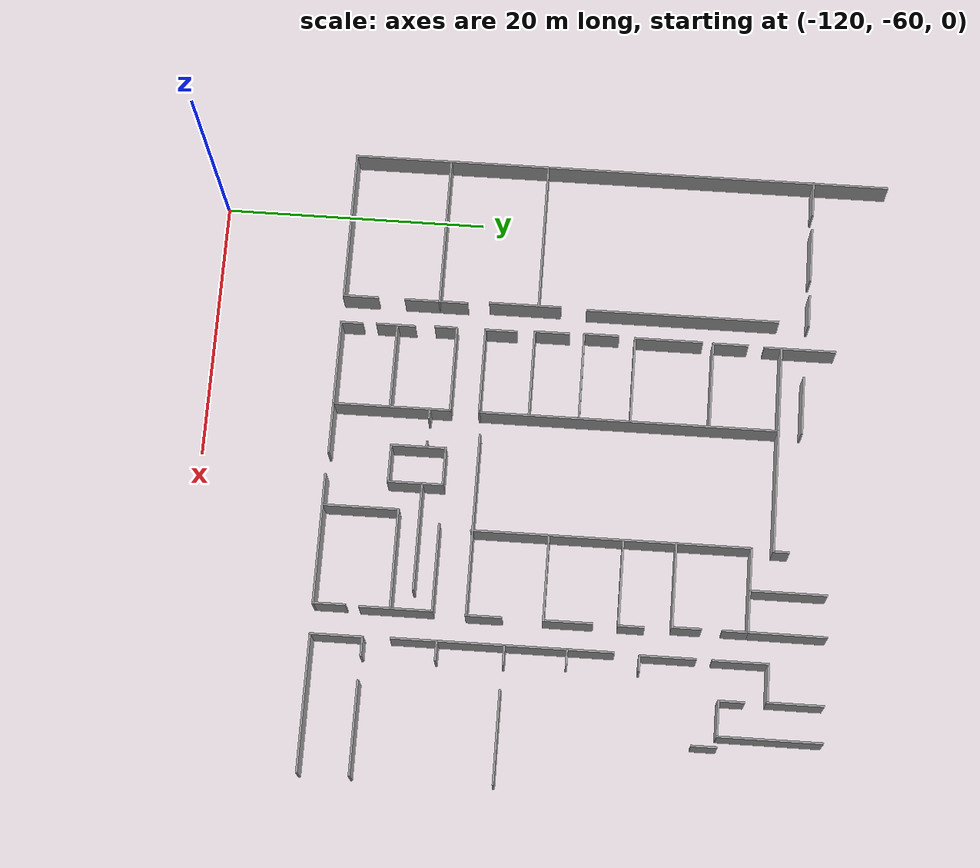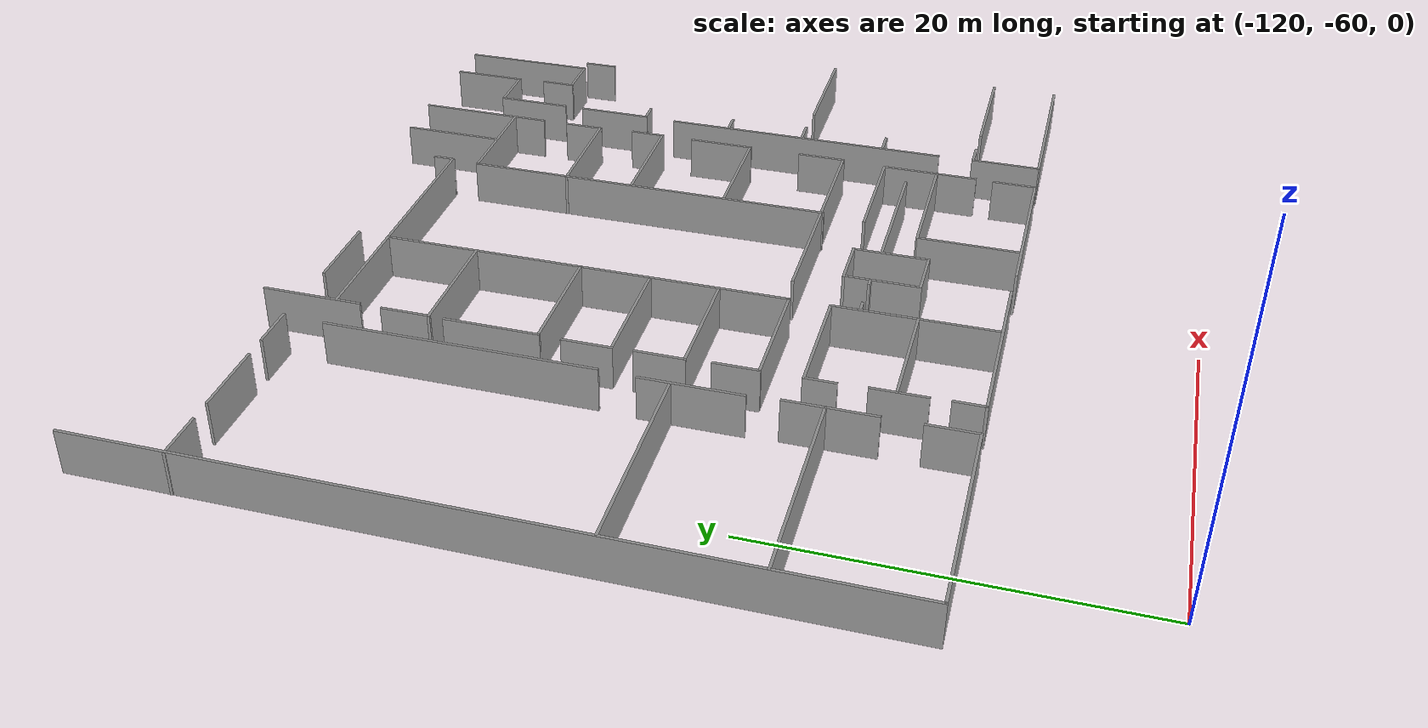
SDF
<sdf version="1.6">
 <model name="ensta_portes">
  <pose>1.28297 8.11006 0 0 -0 0</pose>
  <link name="Wall_600">
   <collision name="Wall_600_Collision">
    <geometry><box><size>41.5 0.15 2.5</size></box></geometry>
    <pose>0 0 1.25 0 -0 0</pose>
   </collision>
   <visual name="Wall_600_Visual">
    <pose>0 0 1.25 0 -0 0</pose>
    <geometry><box><size>41.5 0.15 2.5</size></box></geometry>
    <material>
     <script><uri>file://media/materials/scripts/gazebo.material</uri><name>Gazebo/Grey</name></script>
     <ambient>1 1 1 1</ambient>
    </material>
    <meta><layer>0</layer></meta>
   </visual>
   <pose>-125.511 -37.541 0 0 -0 -1.5708</pose>
  </link>
  <link name="Wall_602">
   <collision name="Wall_602_Collision">
    <geometry><box><size>11.75 0.15 2.5</size></box></geometry>
    <pose>0 0 1.25 0 -0 0</pose>
   </collision>
   <visual name="Wall_602_Visual">
    <pose>0 0 1.25 0 -0 0</pose>
    <geometry><box><size>11.75 0.15 2.5</size></box></geometry>
    <material>
     <script><uri>file://media/materials/scripts/gazebo.material</uri><name>Gazebo/Grey</name></script>
     <ambient>1 1 1 1</ambient>
    </material>
    <meta><layer>0</layer></meta>
   </visual>
   <pose>-119.711 -58.216 0 0 -0 0</pose>
  </link>
  <link name="Wall_604">
   <collision name="Wall_604_Collision">
    <geometry><box><size>2.75 0.15 2.5</size></box></geometry>
    <pose>0 0 1.25 0 -0 0</pose>
   </collision>
   <visual name="Wall_604_Visual">
    <pose>0 0 1.25 0 -0 0</pose>
    <geometry><box><size>2.75 0.15 2.5</size></box></geometry>
    <material>
     <script><uri>file://media/materials/scripts/gazebo.material</uri><name>Gazebo/Grey</name></script>
     <ambient>1 1 1 1</ambient>
    </material>
    <meta><layer>0</layer></meta>
   </visual>
   <pose>-113.911 -56.916 0 0 -0 1.5708</pose>
  </link>
  <link name="Wall_606">
   <collision name="Wall_606_Collision">
    <geometry><box><size>11.75 0.15 2.5</size></box></geometry>
    <pose>0 0 1.25 0 -0 0</pose>
   </collision>
   <visual name="Wall_606_Visual">
    <pose>0 0 1.25 0 -0 0</pose>
    <geometry><box><size>11.75 0.15 2.5</size></box></geometry>
    <material>
     <script><uri>file://media/materials/scripts/gazebo.material</uri><name>Gazebo/Grey</name></script>
     <ambient>1 1 1 1</ambient>
    </material>
    <meta><layer>0</layer></meta>
   </visual>
   <pose>-119.704 -50.8452 0 0 -0 0</pose>
  </link>
  <link name="Wall_607">
   <collision name="Wall_607_Collision">
    <geometry><box><size>2.75 0.15 2.5</size></box></geometry>
    <pose>0 0 1.25 0 -0 0</pose>
   </collision>
   <visual name="Wall_607_Visual">
    <pose>0 0 1.25 0 -0 0</pose>
    <geometry><box><size>2.75 0.15 2.5</size></box></geometry>
    <material>
     <script><uri>file://media/materials/scripts/gazebo.material</uri><name>Gazebo/Grey</name></script>
     <ambient>1 1 1 1</ambient>
    </material>
    <meta><layer>0</layer></meta>
   </visual>
   <pose>-113.904 -52.1452 0 0 -0 -1.5708</pose>
  </link>
  <link name="Wall_609">
   <collision name="Wall_609_Collision">
    <geometry><box><size>2.25 0.15 2.5</size></box></geometry>
    <pose>0 0 1.25 0 -0 0</pose>
   </collision>
   <visual name="Wall_609_Visual">
    <pose>0 0 1.25 0 -0 0</pose>
    <geometry><box><size>2.25 0.15 2.5</size></box></geometry>
    <material>
     <script><uri>file://media/materials/scripts/gazebo.material</uri><name>Gazebo/Grey</name></script>
     <ambient>1 1 1 1</ambient>
    </material>
    <meta><layer>0</layer></meta>
   </visual>
   <pose>-113.904 -49.7952 0 0 -0 1.5708</pose>
  </link>
  <link name="Wall_611">
   <collision name="Wall_611_Collision">
    <geometry><box><size>11.5 0.15 2.5</size></box></geometry>
    <pose>0 0 1.25 0 -0 0</pose>
   </collision>
   <visual name="Wall_611_Visual">
    <pose>0 0 1.25 0 -0 0</pose>
    <geometry><box><size>11.5 0.15 2.5</size></box></geometry>
    <material>
     <script><uri>file://media/materials/scripts/gazebo.material</uri><name>Gazebo/Grey</name></script>
     <ambient>1 1 1 1</ambient>
    </material>
    <meta><layer>0</layer></meta>
   </visual>
   <pose>-119.755 -43.2559 0 0 -0 0</pose>
  </link>
  <link name="Wall_613">
   <collision name="Wall_613_Collision">
    <geometry><box><size>5.5 0.15 2.5</size></box></geometry>
    <pose>0 0 1.25 0 -0 0</pose>
   </collision>
   <visual name="Wall_613_Visual">
    <pose>0 0 1.25 0 -0 0</pose>
    <geometry><box><size>5.5 0.15 2.5</size></box></geometry>
    <material>
     <script><uri>file://media/materials/scripts/gazebo.material</uri><name>Gazebo/Grey</name></script>
     <ambient>1 1 1 1</ambient>
    </material>
    <meta><layer>0</layer></meta>
   </visual>
   <pose>-114.04 -44.2843 0 0 -0 -1.5708</pose>
  </link>
  <link name="Wall_615">
   <collision name="Wall_615_Collision">
    <geometry><box><size>14.75 0.15 2.5</size></box></geometry>
    <pose>0 0 1.25 0 -0 0</pose>
   </collision>
   <visual name="Wall_615_Visual">
    <pose>0 0 1.25 0 -0 0</pose>
    <geometry><box><size>14.75 0.15 2.5</size></box></geometry>
    <material>
     <script><uri>file://media/materials/scripts/gazebo.material</uri><name>Gazebo/Grey</name></script>
     <ambient>1 1 1 1</ambient>
    </material>
    <meta><layer>0</layer></meta>
   </visual>
   <pose>-113.938 -32.2134 0 0 -0 1.5708</pose>
  </link>
  <link name="Wall_617">
   <collision name="Wall_617_Collision">
    <geometry><box><size>2.75 0.15 2.5</size></box></geometry>
    <pose>0 0 1.25 0 -0 0</pose>
   </collision>
   <visual name="Wall_617_Visual">
    <pose>0 0 1.25 0 -0 0</pose>
    <geometry><box><size>2.75 0.15 2.5</size></box></geometry>
    <material>
     <script><uri>file://media/materials/scripts/gazebo.material</uri><name>Gazebo/Grey</name></script>
     <ambient>1 1 1 1</ambient>
    </material>
    <meta><layer>0</layer></meta>
   </visual>
   <pose>-124.25 -22.5738 0 0 -0 0</pose>
  </link>
  <link name="Wall_619">
   <collision name="Wall_619_Collision">
    <geometry><box><size>4.25 0.15 2.5</size></box></geometry>
    <pose>0 0 1.25 0 -0 0</pose>
   </collision>
   <visual name="Wall_619_Visual">
    <pose>0 0 1.25 0 -0 0</pose>
    <geometry><box><size>4.25 0.15 2.5</size></box></geometry>
    <material>
     <script><uri>file://media/materials/scripts/gazebo.material</uri><name>Gazebo/Grey</name></script>
     <ambient>1 1 1 1</ambient>
    </material>
    <meta><layer>0</layer></meta>
   </visual>
   <pose>-119.582 -22.5738 0 0 -0 0</pose>
  </link>
  <link name="Wall_622">
   <collision name="Wall_622_Collision">
    <geometry><box><size>2.5 0.15 2.5</size></box></geometry>
    <pose>0 0 1.25 0 -0 0</pose>
   </collision>
   <visual name="Wall_622_Visual">
    <pose>0 0 1.25 0 -0 0</pose>
    <geometry><box><size>2.5 0.15 2.5</size></box></geometry>
    <material>
     <script><uri>file://media/materials/scripts/gazebo.material</uri><name>Gazebo/Grey</name></script>
     <ambient>1 1 1 1</ambient>
    </material>
    <meta><layer>0</layer></meta>
   </visual>
   <pose>-114.988 -22.5738 0 0 -0 0</pose>
  </link>
  <link name="Wall_629">
   <collision name="Wall_629_Collision">
    <geometry><box><size>5.5 0.15 2.5</size></box></geometry>
    <pose>0 0 1.25 0 -0 0</pose>
   </collision>
   <visual name="Wall_629_Visual">
    <pose>0 0 1.25 0 -0 0</pose>
    <geometry><box><size>5.5 0.15 2.5</size></box></geometry>
    <material>
     <script><uri>file://media/materials/scripts/gazebo.material</uri><name>Gazebo/Grey</name></script>
     <ambient>1 1 1 1</ambient>
    </material>
    <meta><layer>0</layer></meta>
   </visual>
   <pose>-111.805 -23.174 0 0 -0 -1.5708</pose>
  </link>
  <link name="Wall_631">
   <collision name="Wall_631_Collision">
    <geometry><box><size>6.69711 0.15 2.5</size></box></geometry>
    <pose>0 0 1.25 0 -0 0</pose>
   </collision>
   <visual name="Wall_631_Visual">
    <pose>0 0 1.25 0 -0 0</pose>
    <geometry><box><size>6.69711 0.15 2.5</size></box></geometry>
    <material>
     <script><uri>file://media/materials/scripts/gazebo.material</uri><name>Gazebo/Grey</name></script>
     <ambient>1 1 1 1</ambient>
    </material>
    <meta><layer>0</layer></meta>
   </visual>
   <pose>-108.524 -24.5688 0 0 -0 -0.000347</pose>
  </link>
  <link name="Wall_634">
   <collision name="Wall_634_Collision">
    <geometry><box><size>4.5 0.15 2.5</size></box></geometry>
    <pose>0 0 1.25 0 -0 0</pose>
   </collision>
   <visual name="Wall_634_Visual">
    <pose>0 0 1.25 0 -0 0</pose>
    <geometry><box><size>4.5 0.15 2.5</size></box></geometry>
    <material>
     <script><uri>file://media/materials/scripts/gazebo.material</uri><name>Gazebo/Grey</name></script>
     <ambient>1 1 1 1</ambient>
    </material>
    <meta><layer>0</layer></meta>
   </visual>
   <pose>-107.389 -22.8048 0 0 -0 0</pose>
  </link>
  <link name="Wall_636">
   <collision name="Wall_636_Collision">
    <geometry><box><size>2.75 0.15 2.5</size></box></geometry>
    <pose>0 0 1.25 0 -0 0</pose>
   </collision>
   <visual name="Wall_636_Visual">
    <pose>0 0 1.25 0 -0 0</pose>
    <geometry><box><size>2.75 0.15 2.5</size></box></geometry>
    <material>
     <script><uri>file://media/materials/scripts/gazebo.material</uri><name>Gazebo/Grey</name></script>
     <ambient>1 1 1 1</ambient>
    </material>
    <meta><layer>0</layer></meta>
   </visual>
   <pose>-111.872 -28.4729 0 0 -0 -1.5708</pose>
  </link>
  <link name="Wall_638">
   <collision name="Wall_638_Collision">
    <geometry><box><size>6.75 0.15 2.5</size></box></geometry>
    <pose>0 0 1.25 0 -0 0</pose>
   </collision>
   <visual name="Wall_638_Visual">
    <pose>0 0 1.25 0 -0 0</pose>
    <geometry><box><size>6.75 0.15 2.5</size></box></geometry>
    <material>
     <script><uri>file://media/materials/scripts/gazebo.material</uri><name>Gazebo/Grey</name></script>
     <ambient>1 1 1 1</ambient>
    </material>
    <meta><layer>0</layer></meta>
   </visual>
   <pose>-108.572 -29.7729 0 0 -0 0</pose>
  </link>
  <link name="Wall_640">
   <collision name="Wall_640_Collision">
    <geometry><box><size>22.75 0.15 2.5</size></box></geometry>
    <pose>0 0 1.25 0 -0 0</pose>
   </collision>
   <visual name="Wall_640_Visual">
    <pose>0 0 1.25 0 -0 0</pose>
    <geometry><box><size>22.75 0.15 2.5</size></box></geometry>
    <material>
     <script><uri>file://media/materials/scripts/gazebo.material</uri><name>Gazebo/Grey</name></script>
     <ambient>1 1 1 1</ambient>
    </material>
    <meta><layer>0</layer></meta>
   </visual>
   <pose>-105.251 -35.8699 0 0 -0 -1.5708</pose>
  </link>
  <link name="Wall_641">
   <collision name="Wall_641_Collision">
    <geometry><box><size>6.75 0.15 2.5</size></box></geometry>
    <pose>0 0 1.25 0 -0 0</pose>
   </collision>
   <visual name="Wall_641_Visual">
    <pose>0 0 1.25 0 -0 0</pose>
    <geometry><box><size>6.75 0.15 2.5</size></box></geometry>
    <material>
     <script><uri>file://media/materials/scripts/gazebo.material</uri><name>Gazebo/Grey</name></script>
     <ambient>1 1 1 1</ambient>
    </material>
    <meta><layer>0</layer></meta>
   </visual>
   <pose>-108.551 -47.1699 0 0 -0 3.14159</pose>
  </link>
  <link name="Wall_642">
   <collision name="Wall_642_Collision">
    <geometry><box><size>2.5 0.15 2.5</size></box></geometry>
    <pose>0 0 1.25 0 -0 0</pose>
   </collision>
   <visual name="Wall_642_Visual">
    <pose>0 0 1.25 0 -0 0</pose>
    <geometry><box><size>2.5 0.15 2.5</size></box></geometry>
    <material>
     <script><uri>file://media/materials/scripts/gazebo.material</uri><name>Gazebo/Grey</name></script>
     <ambient>1 1 1 1</ambient>
    </material>
    <meta><layer>0</layer></meta>
   </visual>
   <pose>-111.851 -45.9949 0 0 -0 1.5708</pose>
  </link>
  <link name="Wall_644">
   <collision name="Wall_644_Collision">
    <geometry><box><size>5.25 0.15 2.5</size></box></geometry>
    <pose>0 0 1.25 0 -0 0</pose>
   </collision>
   <visual name="Wall_644_Visual">
    <pose>0 0 1.25 0 -0 0</pose>
    <geometry><box><size>5.25 0.15 2.5</size></box></geometry>
    <material>
     <script><uri>file://media/materials/scripts/gazebo.material</uri><name>Gazebo/Grey</name></script>
     <ambient>1 1 1 1</ambient>
    </material>
    <meta><layer>0</layer></meta>
   </visual>
   <pose>-111.913 -33.1892 0 0 -0 -1.5708</pose>
  </link>
  <link name="Wall_645">
   <collision name="Wall_645_Collision">
    <geometry><box><size>6.75 0.15 2.5</size></box></geometry>
    <pose>0 0 1.25 0 -0 0</pose>
   </collision>
   <visual name="Wall_645_Visual">
    <pose>0 0 1.25 0 -0 0</pose>
    <geometry><box><size>6.75 0.15 2.5</size></box></geometry>
    <material>
     <script><uri>file://media/materials/scripts/gazebo.material</uri><name>Gazebo/Grey</name></script>
     <ambient>1 1 1 1</ambient>
    </material>
    <meta><layer>0</layer></meta>
   </visual>
   <pose>-108.613 -35.7392 0 0 -0 0</pose>
  </link>
  <link name="Wall_647">
   <collision name="Wall_647_Collision">
    <geometry><box><size>2.75 0.15 2.5</size></box></geometry>
    <pose>0 0 1.25 0 -0 0</pose>
   </collision>
   <visual name="Wall_647_Visual">
    <pose>0 0 1.25 0 -0 0</pose>
    <geometry><box><size>2.75 0.15 2.5</size></box></geometry>
    <material>
     <script><uri>file://media/materials/scripts/gazebo.material</uri><name>Gazebo/Grey</name></script>
     <ambient>1 1 1 1</ambient>
    </material>
    <meta><layer>0</layer></meta>
   </visual>
   <pose>-112.005 -38.3332 0 0 -0 -1.5708</pose>
  </link>
  <link name="Wall_648">
   <collision name="Wall_648_Collision">
    <geometry><box><size>6.75 0.15 2.5</size></box></geometry>
    <pose>0 0 1.25 0 -0 0</pose>
   </collision>
   <visual name="Wall_648_Visual">
    <pose>0 0 1.25 0 -0 0</pose>
    <geometry><box><size>6.75 0.15 2.5</size></box></geometry>
    <material>
     <script><uri>file://media/materials/scripts/gazebo.material</uri><name>Gazebo/Grey</name></script>
     <ambient>1 1 1 1</ambient>
    </material>
    <meta><layer>0</layer></meta>
   </visual>
   <pose>-108.705 -39.6332 0 0 -0 0</pose>
  </link>
  <link name="Wall_650">
   <collision name="Wall_650_Collision">
    <geometry><box><size>2.75 0.15 2.5</size></box></geometry>
    <pose>0 0 1.25 0 -0 0</pose>
   </collision>
   <visual name="Wall_650_Visual">
    <pose>0 0 1.25 0 -0 0</pose>
    <geometry><box><size>2.75 0.15 2.5</size></box></geometry>
    <material>
     <script><uri>file://media/materials/scripts/gazebo.material</uri><name>Gazebo/Grey</name></script>
     <ambient>1 1 1 1</ambient>
    </material>
    <meta><layer>0</layer></meta>
   </visual>
   <pose>-111.948 -42.1105 0 0 -0 -1.5708</pose>
  </link>
  <link name="Wall_651">
   <collision name="Wall_651_Collision">
    <geometry><box><size>6.75 0.15 2.5</size></box></geometry>
    <pose>0 0 1.25 0 -0 0</pose>
   </collision>
   <visual name="Wall_651_Visual">
    <pose>0 0 1.25 0 -0 0</pose>
    <geometry><box><size>6.75 0.15 2.5</size></box></geometry>
    <material>
     <script><uri>file://media/materials/scripts/gazebo.material</uri><name>Gazebo/Grey</name></script>
     <ambient>1 1 1 1</ambient>
    </material>
    <meta><layer>0</layer></meta>
   </visual>
   <pose>-108.648 -43.4105 0 0 -0 0</pose>
  </link>
  <link name="Wall_653">
   <collision name="Wall_653_Collision">
    <geometry><box><size>10.5 0.15 2.5</size></box></geometry>
    <pose>0 0 1.25 0 -0 0</pose>
   </collision>
   <visual name="Wall_653_Visual">
    <pose>0 0 1.25 0 -0 0</pose>
    <geometry><box><size>10.5 0.15 2.5</size></box></geometry>
    <material>
     <script><uri>file://media/materials/scripts/gazebo.material</uri><name>Gazebo/Grey</name></script>
     <ambient>1 1 1 1</ambient>
    </material>
    <meta><layer>0</layer></meta>
   </visual>
   <pose>-106.573 -58.2122 0 0 -0 0</pose>
  </link>
  <link name="Wall_655">
   <collision name="Wall_655_Collision">
    <geometry><box><size>1.75 0.15 2.5</size></box></geometry>
    <pose>0 0 1.25 0 -0 0</pose>
   </collision>
   <visual name="Wall_655_Visual">
    <pose>0 0 1.25 0 -0 0</pose>
    <geometry><box><size>1.75 0.15 2.5</size></box></geometry>
    <material>
     <script><uri>file://media/materials/scripts/gazebo.material</uri><name>Gazebo/Grey</name></script>
     <ambient>1 1 1 1</ambient>
    </material>
    <meta><layer>0</layer></meta>
   </visual>
   <pose>-111.748 -57.4122 0 0 -0 1.5708</pose>
  </link>
  <link name="Wall_657">
   <collision name="Wall_657_Collision">
    <geometry><box><size>3 0.15 2.5</size></box></geometry>
    <pose>0 0 1.25 0 -0 0</pose>
   </collision>
   <visual name="Wall_657_Visual">
    <pose>0 0 1.25 0 -0 0</pose>
    <geometry><box><size>3 0.15 2.5</size></box></geometry>
    <material>
     <script><uri>file://media/materials/scripts/gazebo.material</uri><name>Gazebo/Grey</name></script>
     <ambient>1 1 1 1</ambient>
    </material>
    <meta><layer>0</layer></meta>
   </visual>
   <pose>-111.783 -54.0238 0 0 -0 1.5708</pose>
  </link>
  <link name="Wall_660">
   <collision name="Wall_660_Collision">
    <geometry><box><size>6.60704 0.15 2.5</size></box></geometry>
    <pose>0 0 1.25 0 -0 0</pose>
   </collision>
   <visual name="Wall_660_Visual">
    <pose>0 0 1.25 0 -0 0</pose>
    <geometry><box><size>6.60704 0.15 2.5</size></box></geometry>
    <material>
     <script><uri>file://media/materials/scripts/gazebo.material</uri><name>Gazebo/Grey</name></script>
     <ambient>1 1 1 1</ambient>
    </material>
    <meta><layer>0</layer></meta>
   </visual>
   <pose>-108.519 -53.9158 0 0 -0 -0.001903</pose>
  </link>
  <link name="Wall_662">
   <collision name="Wall_662_Collision">
    <geometry><box><size>1.75 0.15 2.5</size></box></geometry>
    <pose>0 0 1.25 0 -0 0</pose>
   </collision>
   <visual name="Wall_662_Visual">
    <pose>0 0 1.25 0 -0 0</pose>
    <geometry><box><size>1.75 0.15 2.5</size></box></geometry>
    <material>
     <script><uri>file://media/materials/scripts/gazebo.material</uri><name>Gazebo/Grey</name></script>
     <ambient>1 1 1 1</ambient>
    </material>
    <meta><layer>0</layer></meta>
   </visual>
   <pose>-111.853 -50.1714 0 0 -0 1.5708</pose>
  </link>
  <link name="Wall_663">
   <collision name="Wall_663_Collision">
    <geometry><box><size>6.75 0.15 2.5</size></box></geometry>
    <pose>0 0 1.25 0 -0 0</pose>
   </collision>
   <visual name="Wall_663_Visual">
    <pose>0 0 1.25 0 -0 0</pose>
    <geometry><box><size>6.75 0.15 2.5</size></box></geometry>
    <material>
     <script><uri>file://media/materials/scripts/gazebo.material</uri><name>Gazebo/Grey</name></script>
     <ambient>1 1 1 1</ambient>
    </material>
    <meta><layer>0</layer></meta>
   </visual>
   <pose>-108.553 -49.3714 0 0 -0 0</pose>
  </link>
  <link name="Wall_664">
   <collision name="Wall_664_Collision">
    <geometry><box><size>8.9566 0.15 2.5</size></box></geometry>
    <pose>0 0 1.25 0 -0 0</pose>
   </collision>
   <visual name="Wall_664_Visual">
    <pose>0 0 1.25 0 -0 0</pose>
    <geometry><box><size>8.9566 0.15 2.5</size></box></geometry>
    <material>
     <script><uri>file://media/materials/scripts/gazebo.material</uri><name>Gazebo/Grey</name></script>
     <ambient>1 1 1 1</ambient>
    </material>
    <meta><layer>0</layer></meta>
   </visual>
   <pose>-105.247 -53.7746 0 0 -0 -1.56947</pose>
  </link>
  <link name="Wall_666">
   <collision name="Wall_666_Collision">
    <geometry><box><size>0.75 0.15 2.5</size></box></geometry>
    <pose>0 0 1.25 0 -0 0</pose>
   </collision>
   <visual name="Wall_666_Visual">
    <pose>0 0 1.25 0 -0 0</pose>
    <geometry><box><size>0.75 0.15 2.5</size></box></geometry>
    <material>
     <script><uri>file://media/materials/scripts/gazebo.material</uri><name>Gazebo/Grey</name></script>
     <ambient>1 1 1 1</ambient>
    </material>
    <meta><layer>0</layer></meta>
   </visual>
   <pose>-104.851 -50.9095 0 0 -0 0</pose>
  </link>
  <link name="Wall_668">
   <collision name="Wall_668_Collision">
    <geometry><box><size>4.25 0.15 2.5</size></box></geometry>
    <pose>0 0 1.25 0 -0 0</pose>
   </collision>
   <visual name="Wall_668_Visual">
    <pose>0 0 1.25 0 -0 0</pose>
    <geometry><box><size>4.25 0.15 2.5</size></box></geometry>
    <material>
     <script><uri>file://media/materials/scripts/gazebo.material</uri><name>Gazebo/Grey</name></script>
     <ambient>1 1 1 1</ambient>
    </material>
    <meta><layer>0</layer></meta>
   </visual>
   <pose>-102.251 -51.5195 0 0 -0 -1.5708</pose>
  </link>
  <link name="Wall_670">
   <collision name="Wall_670_Collision">
    <geometry><box><size>0.5 0.15 2.5</size></box></geometry>
    <pose>0 0 1.25 0 -0 0</pose>
   </collision>
   <visual name="Wall_670_Visual">
    <pose>0 0 1.25 0 -0 0</pose>
    <geometry><box><size>0.5 0.15 2.5</size></box></geometry>
    <material>
     <script><uri>file://media/materials/scripts/gazebo.material</uri><name>Gazebo/Grey</name></script>
     <ambient>1 1 1 1</ambient>
    </material>
    <meta><layer>0</layer></meta>
   </visual>
   <pose>-102.498 -50.9058 0 0 -0 0</pose>
  </link>
  <link name="Wall_672">
   <collision name="Wall_672_Collision">
    <geometry><box><size>3 0.15 2.5</size></box></geometry>
    <pose>0 0 1.25 0 -0 0</pose>
   </collision>
   <visual name="Wall_672_Visual">
    <pose>0 0 1.25 0 -0 0</pose>
    <geometry><box><size>3 0.15 2.5</size></box></geometry>
    <material>
     <script><uri>file://media/materials/scripts/gazebo.material</uri><name>Gazebo/Grey</name></script>
     <ambient>1 1 1 1</ambient>
    </material>
    <meta><layer>0</layer></meta>
   </visual>
   <pose>-100.826 -53.5695 0 0 -0 0</pose>
  </link>
  <link name="Wall_674">
   <collision name="Wall_674_Collision">
    <geometry><box><size>3 0.15 2.5</size></box></geometry>
    <pose>0 0 1.25 0 -0 0</pose>
   </collision>
   <visual name="Wall_674_Visual">
    <pose>0 0 1.25 0 -0 0</pose>
    <geometry><box><size>3 0.15 2.5</size></box></geometry>
    <material>
     <script><uri>file://media/materials/scripts/gazebo.material</uri><name>Gazebo/Grey</name></script>
     <ambient>1 1 1 1</ambient>
    </material>
    <meta><layer>0</layer></meta>
   </visual>
   <pose>-100.826 -49.4695 0 0 -0 0</pose>
  </link>
  <link name="Wall_675">
   <collision name="Wall_675_Collision">
    <geometry><box><size>4.25 0.15 2.5</size></box></geometry>
    <pose>0 0 1.25 0 -0 0</pose>
   </collision>
   <visual name="Wall_675_Visual">
    <pose>0 0 1.25 0 -0 0</pose>
    <geometry><box><size>4.25 0.15 2.5</size></box></geometry>
    <material>
     <script><uri>file://media/materials/scripts/gazebo.material</uri><name>Gazebo/Grey</name></script>
     <ambient>1 1 1 1</ambient>
    </material>
    <meta><layer>0</layer></meta>
   </visual>
   <pose>-99.4007 -51.5195 0 0 -0 -1.5708</pose>
  </link>
  <link name="Wall_677">
   <collision name="Wall_677_Collision">
    <geometry><box><size>8.25 0.15 2.5</size></box></geometry>
    <pose>0 0 1.25 0 -0 0</pose>
   </collision>
   <visual name="Wall_677_Visual">
    <pose>0 0 1.25 0 -0 0</pose>
    <geometry><box><size>8.25 0.15 2.5</size></box></geometry>
    <material>
     <script><uri>file://media/materials/scripts/gazebo.material</uri><name>Gazebo/Grey</name></script>
     <ambient>1 1 1 1</ambient>
    </material>
    <meta><layer>0</layer></meta>
   </visual>
   <pose>-95.3379 -51.0064 0 0 -0 0</pose>
  </link>
  <link name="Wall_679">
   <collision name="Wall_679_Collision">
    <geometry><box><size>6.75 0.15 2.5</size></box></geometry>
    <pose>0 0 1.25 0 -0 0</pose>
   </collision>
   <visual name="Wall_679_Visual">
    <pose>0 0 1.25 0 -0 0</pose>
    <geometry><box><size>6.75 0.15 2.5</size></box></geometry>
    <material>
     <script><uri>file://media/materials/scripts/gazebo.material</uri><name>Gazebo/Grey</name></script>
     <ambient>1 1 1 1</ambient>
    </material>
    <meta><layer>0</layer></meta>
   </visual>
   <pose>-93.0479 -49.4864 0 0 -0 0</pose>
  </link>
  <link name="Wall_681">
   <collision name="Wall_681_Collision">
    <geometry><box><size>5.5 0.15 2.5</size></box></geometry>
    <pose>0 0 1.25 0 -0 0</pose>
   </collision>
   <visual name="Wall_681_Visual">
    <pose>0 0 1.25 0 -0 0</pose>
    <geometry><box><size>5.5 0.15 2.5</size></box></geometry>
    <material>
     <script><uri>file://media/materials/scripts/gazebo.material</uri><name>Gazebo/Grey</name></script>
     <ambient>1 1 1 1</ambient>
    </material>
    <meta><layer>0</layer></meta>
   </visual>
   <pose>-89.7479 -52.1614 0 0 -0 -1.5708</pose>
  </link>
  <link name="Wall_683">
   <collision name="Wall_683_Collision">
    <geometry><box><size>2.5 0.15 2.5</size></box></geometry>
    <pose>0 0 1.25 0 -0 0</pose>
   </collision>
   <visual name="Wall_683_Visual">
    <pose>0 0 1.25 0 -0 0</pose>
    <geometry><box><size>2.5 0.15 2.5</size></box></geometry>
    <material>
     <script><uri>file://media/materials/scripts/gazebo.material</uri><name>Gazebo/Grey</name></script>
     <ambient>1 1 1 1</ambient>
    </material>
    <meta><layer>0</layer></meta>
   </visual>
   <pose>-89.8043 -57.1226 0 0 -0 -1.5708</pose>
  </link>
  <link name="Wall_684">
   <collision name="Wall_684_Collision">
    <geometry><box><size>10 0.15 2.5</size></box></geometry>
    <pose>0 0 1.25 0 -0 0</pose>
   </collision>
   <visual name="Wall_684_Visual">
    <pose>0 0 1.25 0 -0 0</pose>
    <geometry><box><size>10 0.15 2.5</size></box></geometry>
    <material>
     <script><uri>file://media/materials/scripts/gazebo.material</uri><name>Gazebo/Grey</name></script>
     <ambient>1 1 1 1</ambient>
    </material>
    <meta><layer>0</layer></meta>
   </visual>
   <pose>-94.7293 -58.2976 0 0 -0 3.14159</pose>
  </link>
  <link name="Wall_686">
   <collision name="Wall_686_Collision">
    <geometry><box><size>5.75 0.15 2.5</size></box></geometry>
    <pose>0 0 1.25 0 -0 0</pose>
   </collision>
   <visual name="Wall_686_Visual">
    <pose>0 0 1.25 0 -0 0</pose>
    <geometry><box><size>5.75 0.15 2.5</size></box></geometry>
    <material>
     <script><uri>file://media/materials/scripts/gazebo.material</uri><name>Gazebo/Grey</name></script>
     <ambient>1 1 1 1</ambient>
    </material>
    <meta><layer>0</layer></meta>
   </visual>
   <pose>-97.2896 -55.4149 0 0 -0 -1.5708</pose>
  </link>
  <link name="Wall_688">
   <collision name="Wall_688_Collision">
    <geometry><box><size>7.67446 0.15 2.5</size></box></geometry>
    <pose>0 0 1.25 0 -0 0</pose>
   </collision>
   <visual name="Wall_688_Visual">
    <pose>0 0 1.25 0 -0 0</pose>
    <geometry><box><size>7.67446 0.15 2.5</size></box></geometry>
    <material>
     <script><uri>file://media/materials/scripts/gazebo.material</uri><name>Gazebo/Grey</name></script>
     <ambient>1 1 1 1</ambient>
    </material>
    <meta><layer>0</layer></meta>
   </visual>
   <pose>-93.5274 -52.6021 0 0 -0 0.00338</pose>
  </link>
  <link name="Wall_690">
   <collision name="Wall_690_Collision">
    <geometry><box><size>14 0.15 2.5</size></box></geometry>
    <pose>0 0 1.25 0 -0 0</pose>
   </collision>
   <visual name="Wall_690_Visual">
    <pose>0 0 1.25 0 -0 0</pose>
    <geometry><box><size>14 0.15 2.5</size></box></geometry>
    <material>
     <script><uri>file://media/materials/scripts/gazebo.material</uri><name>Gazebo/Grey</name></script>
     <ambient>1 1 1 1</ambient>
    </material>
    <meta><layer>0</layer></meta>
   </visual>
   <pose>-96.5219 -46.9744 0 0 -0 0</pose>
  </link>
  <link name="Wall_692">
   <collision name="Wall_692_Collision">
    <geometry><box><size>2.75 0.15 2.5</size></box></geometry>
    <pose>0 0 1.25 0 -0 0</pose>
   </collision>
   <visual name="Wall_692_Visual">
    <pose>0 0 1.25 0 -0 0</pose>
    <geometry><box><size>2.75 0.15 2.5</size></box></geometry>
    <material>
     <script><uri>file://media/materials/scripts/gazebo.material</uri><name>Gazebo/Grey</name></script>
     <ambient>1 1 1 1</ambient>
    </material>
    <meta><layer>0</layer></meta>
   </visual>
   <pose>-89.5969 -45.6744 0 0 -0 1.5708</pose>
  </link>
  <link name="Wall_694">
   <collision name="Wall_694_Collision">
    <geometry><box><size>21 0.15 2.5</size></box></geometry>
    <pose>0 0 1.25 0 -0 0</pose>
   </collision>
   <visual name="Wall_694_Visual">
    <pose>0 0 1.25 0 -0 0</pose>
    <geometry><box><size>21 0.15 2.5</size></box></geometry>
    <material>
     <script><uri>file://media/materials/scripts/gazebo.material</uri><name>Gazebo/Grey</name></script>
     <ambient>1 1 1 1</ambient>
    </material>
    <meta><layer>0</layer></meta>
   </visual>
   <pose>-96.0407 -36.6357 0 0 -0 1.5708</pose>
  </link>
  <link name="Wall_696">
   <collision name="Wall_696_Collision">
    <geometry><box><size>9.5 0.15 2.5</size></box></geometry>
    <pose>0 0 1.25 0 -0 0</pose>
   </collision>
   <visual name="Wall_696_Visual">
    <pose>0 0 1.25 0 -0 0</pose>
    <geometry><box><size>9.5 0.15 2.5</size></box></geometry>
    <material>
     <script><uri>file://media/materials/scripts/gazebo.material</uri><name>Gazebo/Grey</name></script>
     <ambient>1 1 1 1</ambient>
    </material>
    <meta><layer>0</layer></meta>
   </visual>
   <pose>-100.576 -24.5699 0 0 -0 0</pose>
  </link>
  <link name="Wall_697">
   <collision name="Wall_697_Collision">
    <geometry><box><size>1.25 0.15 2.5</size></box></geometry>
    <pose>0 0 1.25 0 -0 0</pose>
   </collision>
   <visual name="Wall_697_Visual">
    <pose>0 0 1.25 0 -0 0</pose>
    <geometry><box><size>1.25 0.15 2.5</size></box></geometry>
    <material>
     <script><uri>file://media/materials/scripts/gazebo.material</uri><name>Gazebo/Grey</name></script>
     <ambient>1 1 1 1</ambient>
    </material>
    <meta><layer>0</layer></meta>
   </visual>
   <pose>-95.9008 -24.0199 0 0 -0 1.5708</pose>
  </link>
  <link name="Wall_702">
   <collision name="Wall_702_Collision">
    <geometry><box><size>6.5 0.15 2.5</size></box></geometry>
    <pose>0 0 1.25 0 -0 0</pose>
   </collision>
   <visual name="Wall_702_Visual">
    <pose>0 0 1.25 0 -0 0</pose>
    <geometry><box><size>6.5 0.15 2.5</size></box></geometry>
    <material>
     <script><uri>file://media/materials/scripts/gazebo.material</uri><name>Gazebo/Grey</name></script>
     <ambient>1 1 1 1</ambient>
    </material>
    <meta><layer>0</layer></meta>
   </visual>
   <pose>-92.8657 -26.2107 0 0 -0 0</pose>
  </link>
  <link name="Wall_703">
   <collision name="Wall_703_Collision">
    <geometry><box><size>5.91531 0.15 2.5</size></box></geometry>
    <pose>0 0 1.25 0 -0 0</pose>
   </collision>
   <visual name="Wall_703_Visual">
    <pose>0 0 1.25 0 -0 0</pose>
    <geometry><box><size>5.91531 0.15 2.5</size></box></geometry>
    <material>
     <script><uri>file://media/materials/scripts/gazebo.material</uri><name>Gazebo/Grey</name></script>
     <ambient>1 1 1 1</ambient>
    </material>
    <meta><layer>0</layer></meta>
   </visual>
   <pose>-89.6809 -23.328 0 0 -0 1.5674</pose>
  </link>
  <link name="Wall_707">
   <collision name="Wall_707_Collision">
    <geometry><box><size>5.75 0.15 2.5</size></box></geometry>
    <pose>0 0 1.25 0 -0 0</pose>
   </collision>
   <visual name="Wall_707_Visual">
    <pose>0 0 1.25 0 -0 0</pose>
    <geometry><box><size>5.75 0.15 2.5</size></box></geometry>
    <material>
     <script><uri>file://media/materials/scripts/gazebo.material</uri><name>Gazebo/Grey</name></script>
     <ambient>1 1 1 1</ambient>
    </material>
    <meta><layer>0</layer></meta>
   </visual>
   <pose>-92.8176 -23.3385 0 0 -0 -1.5708</pose>
  </link>
  <link name="Wall_709">
   <collision name="Wall_709_Collision">
    <geometry><box><size>6.5 0.15 2.5</size></box></geometry>
    <pose>0 0 1.25 0 -0 0</pose>
   </collision>
   <visual name="Wall_709_Visual">
    <pose>0 0 1.25 0 -0 0</pose>
    <geometry><box><size>6.5 0.15 2.5</size></box></geometry>
    <material>
     <script><uri>file://media/materials/scripts/gazebo.material</uri><name>Gazebo/Grey</name></script>
     <ambient>1 1 1 1</ambient>
    </material>
    <meta><layer>0</layer></meta>
   </visual>
   <pose>-92.8706 -31.7944 0 0 -0 0</pose>
  </link>
  <link name="Wall_710">
   <collision name="Wall_710_Collision">
    <geometry><box><size>2.25 0.15 2.5</size></box></geometry>
    <pose>0 0 1.25 0 -0 0</pose>
   </collision>
   <visual name="Wall_710_Visual">
    <pose>0 0 1.25 0 -0 0</pose>
    <geometry><box><size>2.25 0.15 2.5</size></box></geometry>
    <material>
     <script><uri>file://media/materials/scripts/gazebo.material</uri><name>Gazebo/Grey</name></script>
     <ambient>1 1 1 1</ambient>
    </material>
    <meta><layer>0</layer></meta>
   </visual>
   <pose>-89.6956 -30.7444 0 0 -0 1.5708</pose>
  </link>
  <link name="Wall_712">
   <collision name="Wall_712_Collision">
    <geometry><box><size>2 0.15 2.5</size></box></geometry>
    <pose>0 0 1.25 0 -0 0</pose>
   </collision>
   <visual name="Wall_712_Visual">
    <pose>0 0 1.25 0 -0 0</pose>
    <geometry><box><size>2 0.15 2.5</size></box></geometry>
    <material>
     <script><uri>file://media/materials/scripts/gazebo.material</uri><name>Gazebo/Grey</name></script>
     <ambient>1 1 1 1</ambient>
    </material>
    <meta><layer>0</layer></meta>
   </visual>
   <pose>-89.6907 -27.1357 0 0 -0 -1.5708</pose>
  </link>
  <link name="Wall_714">
   <collision name="Wall_714_Collision">
    <geometry><box><size>6.5 0.15 2.5</size></box></geometry>
    <pose>0 0 1.25 0 -0 0</pose>
   </collision>
   <visual name="Wall_714_Visual">
    <pose>0 0 1.25 0 -0 0</pose>
    <geometry><box><size>6.5 0.15 2.5</size></box></geometry>
    <material>
     <script><uri>file://media/materials/scripts/gazebo.material</uri><name>Gazebo/Grey</name></script>
     <ambient>1 1 1 1</ambient>
    </material>
    <meta><layer>0</layer></meta>
   </visual>
   <pose>-92.7329 -35.7407 0 0 -0 0</pose>
  </link>
  <link name="Wall_715">
   <collision name="Wall_715_Collision">
    <geometry><box><size>2 0.15 2.5</size></box></geometry>
    <pose>0 0 1.25 0 -0 0</pose>
   </collision>
   <visual name="Wall_715_Visual">
    <pose>0 0 1.25 0 -0 0</pose>
    <geometry><box><size>2 0.15 2.5</size></box></geometry>
    <material>
     <script><uri>file://media/materials/scripts/gazebo.material</uri><name>Gazebo/Grey</name></script>
     <ambient>1 1 1 1</ambient>
    </material>
    <meta><layer>0</layer></meta>
   </visual>
   <pose>-89.5579 -34.8157 0 0 -0 1.5708</pose>
  </link>
  <link name="Wall_717">
   <collision name="Wall_717_Collision">
    <geometry><box><size>6.5 0.15 2.5</size></box></geometry>
    <pose>0 0 1.25 0 -0 0</pose>
   </collision>
   <visual name="Wall_717_Visual">
    <pose>0 0 1.25 0 -0 0</pose>
    <geometry><box><size>6.5 0.15 2.5</size></box></geometry>
    <material>
     <script><uri>file://media/materials/scripts/gazebo.material</uri><name>Gazebo/Grey</name></script>
     <ambient>1 1 1 1</ambient>
    </material>
    <meta><layer>0</layer></meta>
   </visual>
   <pose>-92.7633 -41.2767 0 0 -0 0</pose>
  </link>
  <link name="Wall_718">
   <collision name="Wall_718_Collision">
    <geometry><box><size>3.75 0.15 2.5</size></box></geometry>
    <pose>0 0 1.25 0 -0 0</pose>
   </collision>
   <visual name="Wall_718_Visual">
    <pose>0 0 1.25 0 -0 0</pose>
    <geometry><box><size>3.75 0.15 2.5</size></box></geometry>
    <material>
     <script><uri>file://media/materials/scripts/gazebo.material</uri><name>Gazebo/Grey</name></script>
     <ambient>1 1 1 1</ambient>
    </material>
    <meta><layer>0</layer></meta>
   </visual>
   <pose>-89.5883 -39.4767 0 0 -0 1.5708</pose>
  </link>
  <link name="Wall_720">
   <collision name="Wall_720_Collision">
    <geometry><box><size>10.323 0.15 2.5</size></box></geometry>
    <pose>0 0 1.25 0 -0 0</pose>
   </collision>
   <visual name="Wall_720_Visual">
    <pose>0 0 1.25 0 -0 0</pose>
    <geometry><box><size>10.323 0.15 2.5</size></box></geometry>
    <material>
     <script><uri>file://media/materials/scripts/gazebo.material</uri><name>Gazebo/Grey</name></script>
     <ambient>1 1 1 1</ambient>
    </material>
    <meta><layer>0</layer></meta>
   </visual>
   <pose>-82.401 -58.2856 0 0 -0 -0.000685</pose>
  </link>
  <link name="Wall_722">
   <collision name="Wall_722_Collision">
    <geometry><box><size>4 0.15 2.5</size></box></geometry>
    <pose>0 0 1.25 0 -0 0</pose>
   </collision>
   <visual name="Wall_722_Visual">
    <pose>0 0 1.25 0 -0 0</pose>
    <geometry><box><size>4 0.15 2.5</size></box></geometry>
    <material>
     <script><uri>file://media/materials/scripts/gazebo.material</uri><name>Gazebo/Grey</name></script>
     <ambient>1 1 1 1</ambient>
    </material>
    <meta><layer>0</layer></meta>
   </visual>
   <pose>-87.4875 -56.3571 0 0 -0 1.5708</pose>
  </link>
  <link name="Wall_723">
   <collision name="Wall_723_Collision">
    <geometry><box><size>1.5 0.15 2.5</size></box></geometry>
    <pose>0 0 1.25 0 -0 0</pose>
   </collision>
   <visual name="Wall_723_Visual">
    <pose>0 0 1.25 0 -0 0</pose>
    <geometry><box><size>1.5 0.15 2.5</size></box></geometry>
    <material>
     <script><uri>file://media/materials/scripts/gazebo.material</uri><name>Gazebo/Grey</name></script>
     <ambient>1 1 1 1</ambient>
    </material>
    <meta><layer>0</layer></meta>
   </visual>
   <pose>-86.8125 -54.4321 0 0 -0 0</pose>
  </link>
  <link name="Wall_725">
   <collision name="Wall_725_Collision">
    <geometry><box><size>7.06039 0.15 2.5</size></box></geometry>
    <pose>0 0 1.25 0 -0 0</pose>
   </collision>
   <visual name="Wall_725_Visual">
    <pose>0 0 1.25 0 -0 0</pose>
    <geometry><box><size>7.06039 0.15 2.5</size></box></geometry>
    <material>
     <script><uri>file://media/materials/scripts/gazebo.material</uri><name>Gazebo/Grey</name></script>
     <ambient>1 1 1 1</ambient>
    </material>
    <meta><layer>0</layer></meta>
   </visual>
   <pose>-80.7776 -54.4844 0 0 -0 -0.001292</pose>
  </link>
  <link name="Wall_731">
   <collision name="Wall_731_Collision">
    <geometry><box><size>16.5 0.15 2.5</size></box></geometry>
    <pose>0 0 1.25 0 -0 0</pose>
   </collision>
   <visual name="Wall_731_Visual">
    <pose>0 0 1.25 0 -0 0</pose>
    <geometry><box><size>16.5 0.15 2.5</size></box></geometry>
    <material>
     <script><uri>file://media/materials/scripts/gazebo.material</uri><name>Gazebo/Grey</name></script>
     <ambient>1 1 1 1</ambient>
    </material>
    <meta><layer>0</layer></meta>
   </visual>
   <pose>-87.5377 -44.1608 0 0 -0 1.5708</pose>
  </link>
  <link name="Wall_733">
   <collision name="Wall_733_Collision">
    <geometry><box><size>4.25 0.15 2.5</size></box></geometry>
    <pose>0 0 1.25 0 -0 0</pose>
   </collision>
   <visual name="Wall_733_Visual">
    <pose>0 0 1.25 0 -0 0</pose>
    <geometry><box><size>4.25 0.15 2.5</size></box></geometry>
    <material>
     <script><uri>file://media/materials/scripts/gazebo.material</uri><name>Gazebo/Grey</name></script>
     <ambient>1 1 1 1</ambient>
    </material>
    <meta><layer>0</layer></meta>
   </visual>
   <pose>-87.4377 -32.0086 0 0 -0 -1.5708</pose>
  </link>
  <link name="Wall_734">
   <collision name="Wall_734_Collision">
    <geometry><box><size>1.25 0.15 2.5</size></box></geometry>
    <pose>0 0 1.25 0 -0 0</pose>
   </collision>
   <visual name="Wall_734_Visual">
    <pose>0 0 1.25 0 -0 0</pose>
    <geometry><box><size>1.25 0.15 2.5</size></box></geometry>
    <material>
     <script><uri>file://media/materials/scripts/gazebo.material</uri><name>Gazebo/Grey</name></script>
     <ambient>1 1 1 1</ambient>
    </material>
    <meta><layer>0</layer></meta>
   </visual>
   <pose>-86.8877 -34.0586 0 0 -0 0</pose>
  </link>
  <link name="Wall_740">
   <collision name="Wall_740_Collision">
    <geometry><box><size>1.25 0.15 2.5</size></box></geometry>
    <pose>0 0 1.25 0 -0 0</pose>
   </collision>
   <visual name="Wall_740_Visual">
    <pose>0 0 1.25 0 -0 0</pose>
    <geometry><box><size>1.25 0.15 2.5</size></box></geometry>
    <material>
     <script><uri>file://media/materials/scripts/gazebo.material</uri><name>Gazebo/Grey</name></script>
     <ambient>1 1 1 1</ambient>
    </material>
    <meta><layer>0</layer></meta>
   </visual>
   <pose>-86.9429 -39.3909 0 0 -0 0</pose>
  </link>
  <link name="Wall_744">
   <collision name="Wall_744_Collision">
    <geometry><box><size>1.5 0.15 2.5</size></box></geometry>
    <pose>0 0 1.25 0 -0 0</pose>
   </collision>
   <visual name="Wall_744_Visual">
    <pose>0 0 1.25 0 -0 0</pose>
    <geometry><box><size>1.5 0.15 2.5</size></box></geometry>
    <material>
     <script><uri>file://media/materials/scripts/gazebo.material</uri><name>Gazebo/Grey</name></script>
     <ambient>1 1 1 1</ambient>
    </material>
    <meta><layer>0</layer></meta>
   </visual>
   <pose>-86.8145 -43.996 0 0 -0 0</pose>
  </link>
  <link name="Wall_746">
   <collision name="Wall_746_Collision">
    <geometry><box><size>7 0.15 2.5</size></box></geometry>
    <pose>0 0 1.25 0 -0 0</pose>
   </collision>
   <visual name="Wall_746_Visual">
    <pose>0 0 1.25 0 -0 0</pose>
    <geometry><box><size>7 0.15 2.5</size></box></geometry>
    <material>
     <script><uri>file://media/materials/scripts/gazebo.material</uri><name>Gazebo/Grey</name></script>
     <ambient>1 1 1 1</ambient>
    </material>
    <meta><layer>0</layer></meta>
   </visual>
   <pose>-80.7887 -44.0881 0 0 -0 0</pose>
  </link>
  <link name="Wall_748">
   <collision name="Wall_748_Collision">
    <geometry><box><size>1.5 0.15 2.5</size></box></geometry>
    <pose>0 0 1.25 0 -0 0</pose>
   </collision>
   <visual name="Wall_748_Visual">
    <pose>0 0 1.25 0 -0 0</pose>
    <geometry><box><size>1.5 0.15 2.5</size></box></geometry>
    <material>
     <script><uri>file://media/materials/scripts/gazebo.material</uri><name>Gazebo/Grey</name></script>
     <ambient>1 1 1 1</ambient>
    </material>
    <meta><layer>0</layer></meta>
   </visual>
   <pose>-86.8285 -48.9727 0 0 -0 0</pose>
  </link>
  <link name="Wall_750">
   <collision name="Wall_750_Collision">
    <geometry><box><size>4.25 0.15 2.5</size></box></geometry>
    <pose>0 0 1.25 0 -0 0</pose>
   </collision>
   <visual name="Wall_750_Visual">
    <pose>0 0 1.25 0 -0 0</pose>
    <geometry><box><size>4.25 0.15 2.5</size></box></geometry>
    <material>
     <script><uri>file://media/materials/scripts/gazebo.material</uri><name>Gazebo/Grey</name></script>
     <ambient>1 1 1 1</ambient>
    </material>
    <meta><layer>0</layer></meta>
   </visual>
   <pose>-87.4266 -26.6595 0 0 -0 1.5708</pose>
  </link>
  <link name="Wall_751">
   <collision name="Wall_751_Collision">
    <geometry><box><size>3 0.15 2.5</size></box></geometry>
    <pose>0 0 1.25 0 -0 0</pose>
   </collision>
   <visual name="Wall_751_Visual">
    <pose>0 0 1.25 0 -0 0</pose>
    <geometry><box><size>3 0.15 2.5</size></box></geometry>
    <material>
     <script><uri>file://media/materials/scripts/gazebo.material</uri><name>Gazebo/Grey</name></script>
     <ambient>1 1 1 1</ambient>
    </material>
    <meta><layer>0</layer></meta>
   </visual>
   <pose>-86.0016 -24.6095 0 0 -0 0</pose>
  </link>
  <link name="Wall_752">
   <collision name="Wall_752_Collision">
    <geometry><box><size>4.25 0.15 2.5</size></box></geometry>
    <pose>0 0 1.25 0 -0 0</pose>
   </collision>
   <visual name="Wall_752_Visual">
    <pose>0 0 1.25 0 -0 0</pose>
    <geometry><box><size>4.25 0.15 2.5</size></box></geometry>
    <material>
     <script><uri>file://media/materials/scripts/gazebo.material</uri><name>Gazebo/Grey</name></script>
     <ambient>1 1 1 1</ambient>
    </material>
    <meta><layer>0</layer></meta>
   </visual>
   <pose>-84.5766 -22.5595 0 0 -0 1.5708</pose>
  </link>
  <link name="Wall_760">
   <collision name="Wall_760_Collision">
    <geometry><box><size>7.75 0.15 2.5</size></box></geometry>
    <pose>0 0 1.25 0 -0 0</pose>
   </collision>
   <visual name="Wall_760_Visual">
    <pose>0 0 1.25 0 -0 0</pose>
    <geometry><box><size>7.75 0.15 2.5</size></box></geometry>
    <material>
     <script><uri>file://media/materials/scripts/gazebo.material</uri><name>Gazebo/Grey</name></script>
     <ambient>1 1 1 1</ambient>
    </material>
    <meta><layer>0</layer></meta>
   </visual>
   <pose>-81.8602 -24.2968 0 0 -0 -1.5708</pose>
  </link>
  <link name="Wall_762">
   <collision name="Wall_762_Collision">
    <geometry><box><size>2 0.15 2.5</size></box></geometry>
    <pose>0 0 1.25 0 -0 0</pose>
   </collision>
   <visual name="Wall_762_Visual">
    <pose>0 0 1.25 0 -0 0</pose>
    <geometry><box><size>2 0.15 2.5</size></box></geometry>
    <material>
     <script><uri>file://media/materials/scripts/gazebo.material</uri><name>Gazebo/Grey</name></script>
     <ambient>1 1 1 1</ambient>
    </material>
    <meta><layer>0</layer></meta>
   </visual>
   <pose>-84.4761 -27.2315 0 0 -0 -1.5708</pose>
  </link>
  <link name="Wall_763">
   <collision name="Wall_763_Collision">
    <geometry><box><size>2.75 0.15 2.5</size></box></geometry>
    <pose>0 0 1.25 0 -0 0</pose>
   </collision>
   <visual name="Wall_763_Visual">
    <pose>0 0 1.25 0 -0 0</pose>
    <geometry><box><size>2.75 0.15 2.5</size></box></geometry>
    <material>
     <script><uri>file://media/materials/scripts/gazebo.material</uri><name>Gazebo/Grey</name></script>
     <ambient>1 1 1 1</ambient>
    </material>
    <meta><layer>0</layer></meta>
   </visual>
   <pose>-83.1761 -28.1565 0 0 -0 0</pose>
  </link>
  <link name="Wall_767">
   <collision name="Wall_767_Collision">
    <geometry><box><size>1.92203 0.15 2.5</size></box></geometry>
    <pose>0 0 1.25 0 -0 0</pose>
   </collision>
   <visual name="Wall_767_Visual">
    <pose>0 0 1.25 0 -0 0</pose>
    <geometry><box><size>1.92203 0.15 2.5</size></box></geometry>
    <material>
     <script><uri>file://media/materials/scripts/gazebo.material</uri><name>Gazebo/Grey</name></script>
     <ambient>1 1 1 1</ambient>
    </material>
    <meta><layer>0</layer></meta>
   </visual>
   <pose>-81.0688 -29.0545 0 0 -0 -1.56999</pose>
  </link>
  <static>1</static>
 </model>
</sdf>
